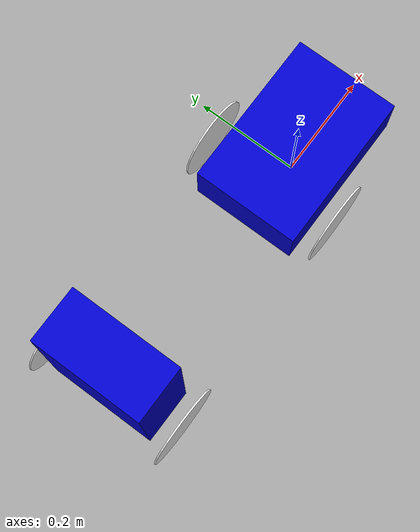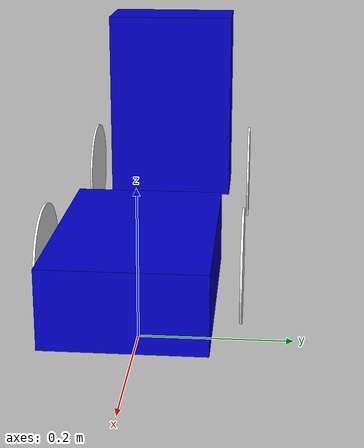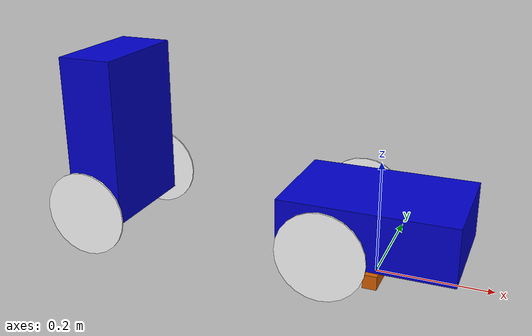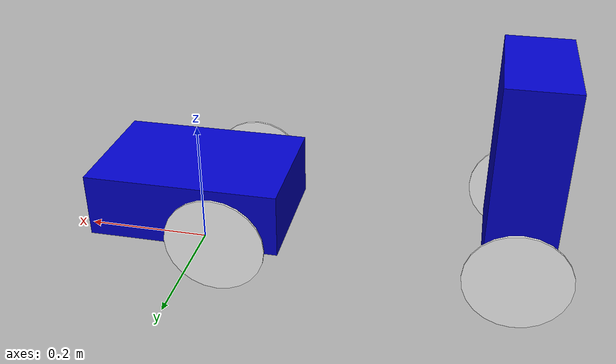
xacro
<?xml version="1.0"?>
<robot name="glide" xmlns:xacro="http://www.ros.org/wiki/xacro">
  <material name="blue">
    <color rgba="0 0 0.8 1"/>
  </material>

  <material name="white">
    <color rgba="1 1 1 1"/>
  </material>

  <xacro:property name="body_width" value="0.2" />
  <xacro:property name="body_length" value="0.3" />
  <xacro:property name="body_height" value="0.1" />
  <xacro:property name="body_center" value="0.1" />

  <xacro:property name="wheel_width" value="0.003" />
  <xacro:property name="wheel_radius" value="0.077" />
  <xacro:property name="wheel_gap" value="0.03175" />
  <xacro:property name="wheel_offset" value="0.0381" />

  <xacro:property name="bar_radius" value="0.003" />
  <xacro:property name="bar_length" value="${2*wheel_gap + body_width}" />

  <xacro:property name="degrees_45" value="${45 * pi/180}"/>
  <xacro:property name="degrees_90" value="${90 * pi/180}"/>
  <xacro:property name="degrees_55" value="${55 * pi/180}"/>

  <xacro:macro name="bar" params="name x_offset z_offset parent_link">
    <link name="${name}_bar_link">
      <visual>
        <geometry>
          <cylinder length="${bar_length}" radius="${bar_radius}"/>
        </geometry>
        <origin rpy="${degrees_90} 0 0" xyz="0 0 0"/>
        <material name="white"/>
      </visual>
      <collision>
        <origin rpy="${degrees_90} 0 0" xyz="0 0 0"/>
        <geometry>
          <cylinder length="${bar_length}" radius="${bar_radius}"/>
        </geometry>
      </collision>
    </link>
    <gazebo reference="${name}_bar_link">
      <material>Gazebo/White</material>
    </gazebo>

    <joint name="${name}_bar_joint" type="revolute">
      <limit lower="-0.2" upper="0.2" effort="100" velocity="3"/>
      <origin rpy="0 0 0" xyz="${x_offset} 0 ${z_offset}"/>
      <parent link="${parent_link}"/>
      <child link="${name}_bar_link"/>
      <axis xyz="0 0 1"/>
    </joint>
  </xacro:macro>

  <xacro:macro name="steer_wheel" params="name offset xy_reflect">
    <link name="front_${name}_wheel">
      <visual>
        <geometry>
          <cylinder length="${wheel_width}" radius="${wheel_radius}"/>
        </geometry>
        <origin rpy="0 0 0" xyz="0 0 0"/>
        <material name="white"/>
      </visual>
      <collision>
        <origin rpy="0 0 0" xyz="0 0 0"/>
        <geometry>
          <cylinder length="${wheel_width}" radius="${wheel_radius}"/>
        </geometry>
      </collision>
      <inertial>
        <origin rpy="0 0 0" xyz="0 0 0"/>
        <mass value="5.0"/>
        <inertia ixx="7.90866056" ixy="0.00000006" ixz="0" iyy="7.90866056" iyz="0" izz="2.48398783"/>
	    </inertial>
    </link>
    <gazebo reference="$front_{name}_wheel">
      <material>Gazebo/White</material>
    </gazebo>

    <joint name="front_${name}_wheel_joint" type="revolute">
      <limit lower="-0.9" upper="0.9" effort="100" velocity="1"/>
      <origin rpy="${degrees_90} 0 ${pi}" xyz="${offset + wheel_offset} ${xy_reflect * (wheel_gap + body_width/2)} ${wheel_radius}"/>
      <parent link="base_link"/>
      <child link="front_${name}_wheel"/>
      <axis xyz="0 1 0"/>
      <axis2 xyz="0 0 1"/>
    </joint>
  </xacro:macro>

  <xacro:macro name="rotate_wheel" params="name offset xy_reflect">
    <link name="rear_${name}_wheel">
      <visual>
        <geometry>
          <cylinder length="${wheel_width}" radius="${wheel_radius}"/>
        </geometry>
        <origin rpy="0 0 0" xyz="0 0 0"/>
        <material name="white"/>
      </visual>
      <collision>
        <origin rpy="0 0 0" xyz="0 0 0"/>
        <geometry>
          <cylinder length="${wheel_width}" radius="${wheel_radius}"/>
        </geometry>
      </collision>
      <inertial>
        <origin rpy="0 0 0" xyz="0 0 0"/>
        <mass value="5.0"/>
        <inertia ixx="7.90866056" ixy="0.00000006" ixz="0" iyy="7.90866056" iyz="0" izz="2.48398783"/>
      </inertial>
    </link>
    <joint name="rear_${name}_wheel_joint" type="continuous">
      <origin rpy="${degrees_90} 0 ${pi}" xyz="-0.5 ${xy_reflect * (wheel_gap + body_width/2)} ${wheel_radius}"/>
      <parent link="base_link"/>
      <child link="rear_${name}_wheel"/>
      <axis xyz="0 0 1"/>
    </joint>
  </xacro:macro>

  <link name="base_link">
    <visual>
      <geometry>
        <box size="${body_length} ${body_width} ${body_height}"/>
      </geometry>
      <origin rpy="0 0 0" xyz="0 0 ${body_center}"/>
      <material name="blue"/>
    </visual>
  </link>
  <gazebo reference="base_link">
      <material>Gazebo/Blue</material>
  </gazebo>

  <xacro:steer_wheel name="right" offset="-0.1" xy_reflect="-1"/>
  <xacro:steer_wheel name="left" offset="-0.1" xy_reflect="1"/>
  <xacro:rotate_wheel name="right" offset="-0.1" xy_reflect="-1" />
  <xacro:rotate_wheel name="left" offset="-0.1" xy_reflect="1" />
<link name="camera_bottom_screw_frame">
    <visual>
      <geometry>
          <box size="0.02505 0.090 0.025"/>
      </geometry>
    </visual>
    <collision>
      <geometry>
          <box size="0.02505 0.090 0.025"/>
      </geometry>
    </collision>
  </link>

  <link name="camera_link"></link>

  <link name="camera_depth_frame"></link>

  <link name="camera_depth_optical_frame"></link>

  <link name="camera_color_frame"></link>

  <link name="camera_color_optical_frame"></link>

  <link name="camera_left_ir_frame"></link>

  <link name="camera_left_ir_optical_frame"></link>

  <link name="camera_right_ir_frame"></link>

  <link name="camera_right_ir_optical_frame"></link>

   <joint name="camera_joint" type="fixed">
    <parent link="base_link" />
    <child link="camera_bottom_screw_frame" />
    <pose xyz="0.4 0 0.25" rpy="0 0 0" />
  </joint>

  <joint name="camera_link_joint" type="fixed">
    <parent link="camera_bottom_screw_frame" />
    <child link="camera_link" />
    <pose xyz="0 0.0175 0.0125 " rpy="0 0 0" />
  </joint>

  <joint name="camera_depth_joint" type="fixed">
    <parent link="camera_link" />
    <child link="camera_depth_frame" />
    <pose xyz="0 0 0" rpy="0 0 0" />
  </joint>

  <joint name="camera_depth_optical_joint" type="fixed">
    <parent link="camera_depth_frame" />
    <child link="camera_depth_optical_frame" />
    <pose xyz="0 0 0 " rpy="-1.57 0 -1.57" />
  </joint>

  <joint name="camera_color_joint" type="fixed">
    <parent link="camera_depth_frame" />
    <child link="camera_color_frame" />
    <pose xyz="0 0 0" rpy="0 0 0" />
  </joint>

  <joint name="camera_color_optical_joint" type="fixed">
    <parent link="camera_color_frame" />
    <child link="camera_color_optical_frame" />
    <pose xyz="0 0 0 " rpy="-1.57 0 -1.57" />
  </joint>

  <joint name="camera_left_ir_joint" type="fixed">
    <parent link="camera_depth_frame" />
    <child link="camera_left_ir_frame" />
    <pose xyz="0 0 0 " rpy="0 0 0 " />
  </joint>

  <joint name="camera_left_ir_optical_joint" type="fixed">
    <parent link="camera_left_ir_frame" />
    <child link="camera_left_ir_optical_frame" />
    <pose xyz="0 0 0 " rpy="-1.57 0 -1.57" />
  </joint>

  <joint name="camera_right_ir_joint" type="fixed">
    <parent link="camera_depth_frame" />
    <child link="camera_right_ir_frame" />
    <pose xyz="0 -0.050 0 " rpy="0 0 0" />
  </joint>

  <joint name="camera_right_ir_optical_joint" type="fixed">
    <parent link="camera_right_ir_frame" />
    <child link="camera_right_ir_optical_frame" />
    <pose xyz="0 0 0 " rpy="-1.57 0 -1.57" />
  </joint>

  <link name="human_link">
    <visual>
      <geometry>
        <box size="${body_length} ${body_width} ${body_height}"/>
      </geometry>
      <material name="blue"/>
    </visual>
  </link>
  <joint name="base_to_human" type="fixed">
    <origin rpy="0 ${degrees_90} 0" xyz="-0.5 0.0 ${2*body_center}"/>
    <parent link="base_link"/>
    <child link="human_link"/>
  </joint>

</robot>
